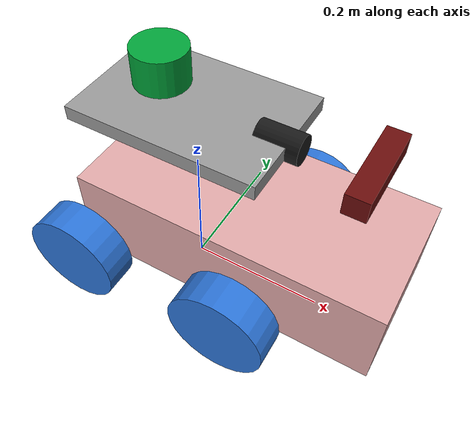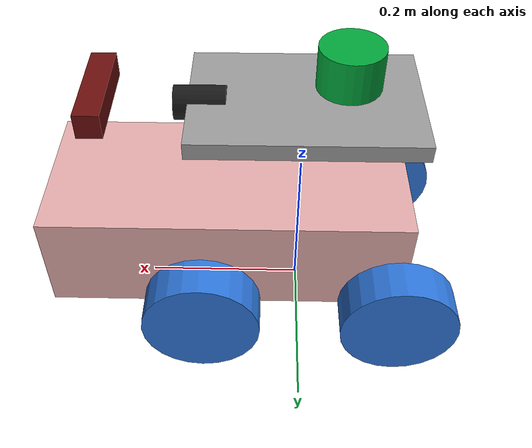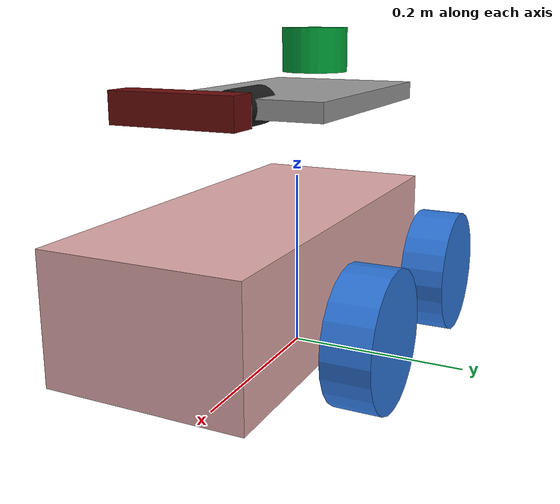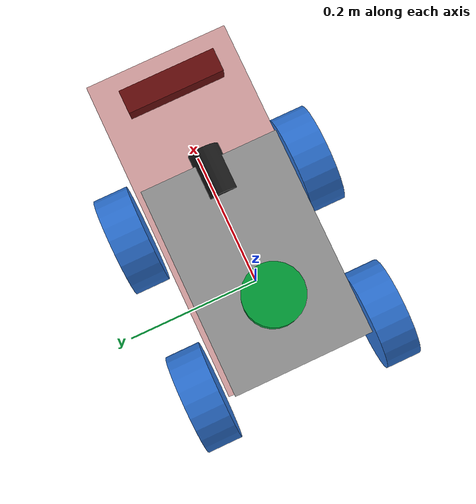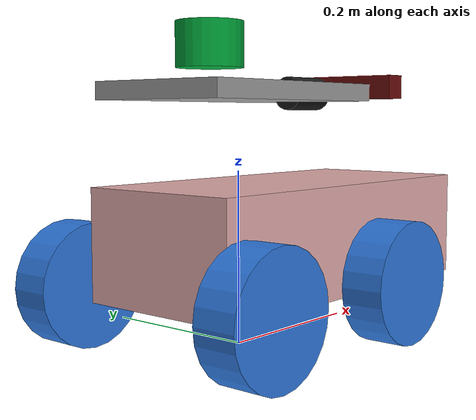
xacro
<?xml version="1.0"?>
<robot name="linorobot2_mecanum" xmlns:xacro="http://ros.org/wiki/xacro">
  <xacro:include filename="$(find linorobot2_description)/urdf/mecanum_properties.urdf.xacro" />
  <xacro:include filename="$(find linorobot2_description)/urdf/mech/base.urdf.xacro" />
  <xacro:include filename="$(find linorobot2_description)/urdf/mech/mecanum_wheel.urdf.xacro" />
  <xacro:include filename="$(find linorobot2_description)/urdf/mech/lift.urdf.xacro" />
  <xacro:include filename="$(find linorobot2_description)/urdf/mech/gripper.urdf.xacro" />
  <xacro:include filename="$(find linorobot2_description)/urdf/sensors/plugins.urdf.xacro" />
  <xacro:include filename="$(find linorobot2_description)/urdf/sensors/imu.urdf.xacro" />
  <xacro:include filename="$(find linorobot2_description)/urdf/sensors/generic_laser.urdf.xacro" />
  <xacro:include filename="$(find linorobot2_description)/urdf/sensors/depth_sensor.urdf.xacro" />
  <!-- Gazebo Classic diff_drive plugin (replaces ros2_control which crashes on Humble) -->
  <xacro:include filename="$(find linorobot2_description)/urdf/controllers/gazebo_classic_drive.urdf.xacro" />

  <!-- Chassis base -->
  <xacro:base
    length="${base_length}"
    width="${base_width}"
    height="${base_height}"
    mass="${base_mass}"
    wheel_radius="${wheel_radius}"
    wheel_pos_z="${wheel_pos_z}"
    mesh_file="${base_mesh_file}"
  />

  <!-- 4x Mecanum wheels -->
  <xacro:mecanum_wheel
    side="front_left"
    radius="${wheel_radius}"
    width="${wheel_width}"
    pos_x="${wheel_pos_x}"
    pos_y="${wheel_pos_y}"
    pos_z="${wheel_pos_z}"
    mass="${wheel_mass}"
    mesh_file="${wheel_mesh_file}"
  />
  <xacro:mecanum_wheel
    side="front_right"
    radius="${wheel_radius}"
    width="${wheel_width}"
    pos_x="${wheel_pos_x}"
    pos_y="${-wheel_pos_y}"
    pos_z="${wheel_pos_z}"
    mass="${wheel_mass}"
    mesh_file="${wheel_mesh_file}"
  />
  <xacro:mecanum_wheel
    side="rear_left"
    radius="${wheel_radius}"
    width="${wheel_width}"
    pos_x="${-wheel_pos_x}"
    pos_y="${wheel_pos_y}"
    pos_z="${wheel_pos_z}"
    mass="${wheel_mass}"
    mesh_file="${wheel_mesh_file}"
  />
  <xacro:mecanum_wheel
    side="rear_right"
    radius="${wheel_radius}"
    width="${wheel_width}"
    pos_x="${-wheel_pos_x}"
    pos_y="${-wheel_pos_y}"
    pos_z="${wheel_pos_z}"
    mass="${wheel_mass}"
    mesh_file="${wheel_mesh_file}"
  />

  <!-- Prismatic lift mechanism (base_link → lift_link, 0.0–0.8m Z range) -->
  <xacro:lift_mechanism base_length="${base_length}" />

  <!-- Campaign 5: Vacuum suction gripper mounted on lift_link -->
  <xacro:vacuum_gripper parent_link="lift_link" lift_z="0.0" />

  <!-- Sensors mounted on lift_link for multi-level scanning -->
  <xacro:imu parent_link="lift_link">
    <origin xyz="0 0 0.05" rpy="0 0 0"/>
  </xacro:imu>

  <xacro:generic_laser parent_link="lift_link">
    <xacro:insert_block name="laser_pose" />
  </xacro:generic_laser>

  <xacro:depth_sensor parent_link="lift_link">
    <xacro:insert_block name="depth_sensor_pose" />
  </xacro:depth_sensor>

  <!-- Gazebo Classic diff_drive + joint_state_publisher -->
  <xacro:classic_drive_plugin />
</robot>

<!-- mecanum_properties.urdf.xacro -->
<robot xmlns:xacro="http://ros.org/wiki/xacro">
  <xacro:arg name="namespace" default="" />
  <xacro:property name="base_length" value="0.445" />
  <xacro:property name="base_width" value="0.200" />
  <xacro:property name="base_height" value="0.129" />
  <xacro:property name="base_mass" value="10" />
  <!-- set empty on the wheel_mesh_file to use geometry instead of mesh -->
  <xacro:property name="base_mesh_file" value="" />

  <xacro:property name="wheel_radius" value="0.07162" />
  <xacro:property name="wheel_width" value="0.05" />
  <xacro:property name="wheel_pos_x" value="0.120" />
  <xacro:property name="wheel_pos_y" value="0.1355" />
  <xacro:property name="wheel_pos_z" value="-0.04788" />
  <xacro:property name="wheel_mass" value=".6" />
  <xacro:property name="wheel_torque" value="20" />
  <!-- set empty on the wheel_mesh_file to use geometry instead of mesh -->
  <xacro:property name="wheel_mesh_file" value="" />

  <xacro:property name="laser_pose">
    <origin xyz="-0.0475 0 0.125" rpy="0 0 0"/>
  </xacro:property>

  <xacro:property name="depth_sensor_pose">
    <origin xyz="0.2375 0 0.06" rpy="0 0 0"/>
  </xacro:property>
</robot>

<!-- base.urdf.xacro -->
<robot xmlns:xacro="http://ros.org/wiki/xacro">
  <xacro:macro name="base" params="length width height mass wheel_radius wheel_pos_z mesh_file">
    <link name="base_footprint"/>

    <link name="base_link">
      <visual>
        <origin xyz="${(length/2) - 0.1327} 0 0" rpy="0 0 0"/>
        <geometry>
          <xacro:if value="${mesh_file == ''}">
            <box size="${length} ${width} ${height}"/>
          </xacro:if>
          <xacro:unless value="${mesh_file == ''}">
            <mesh filename="${mesh_file}" scale="1 1 1"/>
          </xacro:unless>
        </geometry>
        <material name="yellow">
          <color rgba="0.8784 0.6627 0.6627 1.0"/>
        </material>
      </visual>

      <collision>
        <origin xyz="${(length/2) - 0.0127} 0 0" rpy="0 0 0"/>
        <geometry>
          <box size="${length} ${width} ${height}"/>
        </geometry>
      </collision>

      <inertial>
        <origin xyz="0 0 0" rpy="0 0 0"/>
        <mass value="${mass}"/>
        <inertia ixx="${(1/12) * mass * ((width  * width)  + (height * height))}" ixy="0.0" ixz="0.0"
                 iyy="${(1/12) * mass * ((length * length) + (height * height))}" iyz="0.0"
                 izz="${(1/12) * mass * ((length * length) + (width  * width))}"/>
      </inertial>
    </link>

    <gazebo reference="base_link">
      <visual>
        <material>
          <ambient>0.8392 0.6314 0.0 1.0</ambient>
          <diffuse>0.8392 0.6314 0.0 1.0</diffuse>
          <specular>0.99 0.99 0.99 1.0</specular>
          <emissive>0.0 0.0 0.0 0.0</emissive>
        </material>
      </visual>
    </gazebo>

    <joint name="base_to_footprint" type="fixed">
      <parent link="base_footprint"/>
      <child link="base_link"/>
      <origin xyz="0 0 ${wheel_radius - wheel_pos_z}" rpy="0 0 0"/>
    </joint>
  </xacro:macro>
</robot>

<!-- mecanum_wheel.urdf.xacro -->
<robot xmlns:xacro="http://ros.org/wiki/xacro" xmlns:gz="http://gazebosim.org/schema">
  <xacro:macro name="mecanum_wheel" params="side radius width pos_x pos_y pos_z mass mesh_file">
    <link name="${side}_wheel_link">
      <visual>
        <origin xyz="0 0 0" rpy="${pi/2} 0 0"/>
        <geometry>
          <xacro:if value="${mesh_file == ''}">
            <cylinder radius="${radius}" length="${width}"/>
          </xacro:if>
          <xacro:unless value="${mesh_file == ''}">
            <mesh filename="${mesh_file}" scale="1 1 1"/>
          </xacro:unless>
        </geometry>
        <material name="blue">
            <color rgba="0.1764 0.4588 0.8509 1.0"/>
        </material>
      </visual>
      <collision>
        <origin xyz="0 0 0" rpy="${pi/2} 0 0"/>
        <geometry>
          <cylinder radius="${radius}" length="${width}"/>
        </geometry>
      </collision>

      <inertial>
        <origin xyz="0 0 0" rpy="0 0 0"/>
        <mass value="${mass}"/>
        <inertia ixx="${(2/5) * mass * (radius * radius)}" ixy="0" ixz="0"
                 iyy="${(2/5) * mass * (radius * radius)}" iyz="0"
                 izz="${(2/5) * mass * (radius * radius)}" />
      </inertial>
    </link>

    <gazebo reference="${side}_wheel_link">
      <collision>
        <surface>
          <friction>
            <ode>
              <mu>1.5</mu>
              <mu2>0.7</mu2>
              <kp>200000.0</kp>
              <kd>5000.0</kd>
              <xacro:if value="${side == 'front_left'}">
                <fdir1 gz:expressed_in="base_footprint">1 -1 0</fdir1>
              </xacro:if>
              <xacro:if value="${side == 'rear_left'}">
                <fdir1 gz:expressed_in="base_footprint">1 1 0</fdir1>
              </xacro:if>
              <xacro:if value="${side == 'front_right'}">
                <fdir1 gz:expressed_in="base_footprint">1 1 0</fdir1>
              </xacro:if>
              <xacro:if value="${side == 'rear_right'}">
                <fdir1 gz:expressed_in="base_footprint">1 -1 0</fdir1>
              </xacro:if>
            </ode>
          </friction>
        </surface>
      </collision>
    </gazebo>

    <gazebo reference="${side}_wheel_link">
      <visual>
        <material>
          <ambient>0.1764 0.4588 0.8509 1.0</ambient>
          <diffuse>0.1764 0.4588 0.8509 1.0</diffuse>
          <specular>0.1764 0.4588 0.8509 1.0</specular>
          <emissive>0.0 0.0 0.0 0.0</emissive>
        </material>
      </visual>
    </gazebo>
    <joint name="${side}_wheel_joint" type="continuous">
      <axis xyz="0 1 0" />
      <parent link="base_link"/>
      <child link="${side}_wheel_link"/>
      <origin xyz="${pos_x} ${pos_y} ${pos_z}" rpy="0 0 0"/>
    </joint>
  </xacro:macro>
</robot>

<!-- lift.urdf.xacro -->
<robot xmlns:xacro="http://ros.org/wiki/xacro">
  <xacro:macro name="lift_mechanism" params="base_length">
    <!-- Prismatic lift joint: vertical (Z-axis), range 0.0 ~ 0.8m -->
    <joint name="lift_joint" type="prismatic">
      <parent link="base_link"/>
      <child link="lift_link"/>
      <origin xyz="0 0 0.12" rpy="0 0 0"/>
      <axis xyz="0 0 1"/>
      <limit effort="100" lower="0.0" upper="0.8" velocity="0.2"/>
      <dynamics damping="10.0" friction="5.0"/>
    </joint>

    <!-- Lift platform (payload carrier) -->
    <link name="lift_link">
      <visual>
        <origin xyz="0 0 0.05" rpy="0 0 0"/>
        <geometry>
          <box size="${base_length * 0.6} ${base_length * 0.4} 0.02"/>
        </geometry>
        <material name="gray">
          <color rgba="0.6 0.6 0.6 1.0"/>
        </material>
      </visual>

      <collision>
        <origin xyz="0 0 0.05" rpy="0 0 0"/>
        <geometry>
          <box size="${base_length * 0.6} ${base_length * 0.4} 0.02"/>
        </geometry>
      </collision>

      <inertial>
        <origin xyz="0 0 0.05" rpy="0 0 0"/>
        <!-- Non-zero mass and inertia — anti-explosion constraint -->
        <mass value="2.0"/>
        <inertia
          ixx="0.02" ixy="0.0" ixz="0.0"
          iyy="0.02" iyz="0.0"
          izz="0.01"/>
      </inertial>
    </link>

    <gazebo reference="lift_link">
      <visual>
        <material>
          <ambient>0.6 0.6 0.6 1.0</ambient>
          <diffuse>0.6 0.6 0.6 1.0</diffuse>
          <specular>0.1 0.1 0.1 1.0</specular>
        </material>
      </visual>
    </gazebo>
  </xacro:macro>
</robot>

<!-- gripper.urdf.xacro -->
<robot xmlns:xacro="http://ros.org/wiki/xacro">
  <xacro:macro name="vacuum_gripper" params="parent_link lift_z">
    <link name="suction_link">
      <visual>
        <origin xyz="0 0 0" rpy="0 1.570796 0"/>
        <geometry>
          <cylinder radius="0.02" length="0.06"/>
        </geometry>
        <material name="black">
          <color rgba="0.1 0.1 0.1 1.0"/>
        </material>
      </visual>

      <collision>
        <!-- Small collision volume: 4cm radius × 6cm cylinder, no overlap with lift_link -->
        <origin xyz="0 0 0" rpy="0 1.570796 0"/>
        <geometry>
          <cylinder radius="0.02" length="0.06"/>
        </geometry>
      </collision>

      <inertial>
        <origin xyz="0 0 0" rpy="0 0 0"/>
        <mass value="0.05"/>  <!-- very light -->
        <inertia ixx="1e-5" ixy="0.0" ixz="0.0"
                 iyy="1e-5" iyz="0.0"
                 izz="1e-5"/>
      </inertial>
    </link>

    <!-- Fixed joint: front of lift_link → suction cup tip -->
    <joint name="suction_joint" type="fixed">
      <parent link="${parent_link}"/>
      <child link="suction_link"/>
      <!-- Position at front face of lift_link (lift_link visual/collision front edge) -->
      <origin xyz="0.12 0 0.05" rpy="0 0 0"/>
    </joint>

    <!-- gazebo_ros_vacuum_gripper plugin -->
    <gazebo>
      <plugin filename="libgazebo_ros_vacuum_gripper.so"
              name="gazebo_ros_vacuum_gripper">
        <ros>
          <namespace>/gripper</namespace>
          <remapping>switch:=switch</remapping>
        </ros>
        <link_name>suction_link</link_name>
        <max_distance>0.04</max_distance>
        <min_distance>0.005</min_distance>
        <fixed>false</fixed>
      </plugin>
    </gazebo>

    <gazebo reference="suction_link">
      <visual>
        <material>
          <ambient>0.15 0.15 0.15 1.0</ambient>
          <diffuse>0.15 0.15 0.15 1.0</diffuse>
        </material>
      </visual>
    </gazebo>
  </xacro:macro>
</robot>

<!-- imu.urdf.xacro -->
<robot xmlns:xacro="http://ros.org/wiki/xacro">
  <xacro:macro name="imu" params="parent_link:=base_link *origin">
    <link name="imu_link"/>

    <joint name="imu_joint" type="fixed">
      <parent link="${parent_link}"/>
      <child link="imu_link"/>
      <xacro:insert_block name="origin" />
    </joint>

    <gazebo reference="imu_link">
      <sensor name="imu_sensor" type="imu">
        <topic>imu/data</topic>
        <update_rate>50</update_rate>
        <always_on>true</always_on>
        <visualize>true</visualize>
      </sensor>
    </gazebo>
  </xacro:macro>
</robot>

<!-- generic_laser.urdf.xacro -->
<robot xmlns:xacro="http://ros.org/wiki/xacro">
  <xacro:include filename="$(find linorobot2_description)/urdf/sensors/laser.urdf.xacro" />

  <xacro:macro name="generic_laser" params="*origin parent_link:=base_link">
    <xacro:laser
      update_rate="10"
      ray_count="360"
      min_angle="-3.1416"
      max_angle="3.1416"
      min_range="0.08"
      max_range="12.0"
      frame_id="laser"
      topic_name="scan"
      parent_link="${parent_link}"
    >
      <xacro:insert_block name="origin" />
    </xacro:laser>
  </xacro:macro>

  <xacro:macro name="generic_base_laser" params="*origin parent_link:=base_link">
    <xacro:laser
      update_rate="10"
      ray_count="360"
      min_angle="-3.1416"
      max_angle="3.1416"
      min_range="0.21"
      max_range="5.5"
      frame_id="base_laser"
      topic_name="base/scan"
      parent_link="${parent_link}"
    >
      <xacro:insert_block name="origin" />
    </xacro:laser>
  </xacro:macro>
</robot>

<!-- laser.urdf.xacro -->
<robot xmlns:xacro="http://ros.org/wiki/xacro">
  <xacro:property name="M_PI" value="3.1415926535897931" />
  <xacro:macro name="laser" params="*origin update_rate ray_count min_angle max_angle min_range max_range frame_id topic_name parent_link:=base_link">
    <link name="${frame_id}">
      <visual>
        <origin xyz="0 0 -0.025" rpy="0 0 0"/>
        <geometry>
          <cylinder radius="0.0375" length="0.05"/>
        </geometry>
        <material name="green">
            <color rgba="0.003 0.639 0.223 1.0"/>
        </material>
      </visual>
      <collision>
        <origin xyz="0 0 -0.025" rpy="0 0 0"/>
        <geometry>
          <cylinder radius="0.0375" length="0.05"/>
        </geometry>
      </collision>

      <inertial>
        <origin xyz="0 0 0" rpy="0 0 0"/>
        <mass value="0.1"/>
        <inertia ixx="${(2/5) * 0.1 * (0.0375 * 0.0375)}" ixy="0" ixz="0"
                 iyy="${(2/5) * 0.1 * (0.0375 * 0.0375)}" iyz="0"
                 izz="${(2/5) * 0.1 * (0.0375 * 0.0375)}" />
      </inertial>
    </link>

    <gazebo reference="${frame_id}">
      <visual>
        <material>
          <ambient>0.003 0.639 0.223 1.0</ambient>
          <diffuse>0.003 0.639 0.223 1.0</diffuse>
          <specular>0.003 0.639 0.223 1.0</specular>
          <emissive>0.0 0.0 0.0 0.0</emissive>
        </material>
      </visual>
    </gazebo>

    <joint name="${frame_id}_joint" type="fixed">
      <parent link="${parent_link}"/>
      <child link="${frame_id}"/>
      <xacro:insert_block name="origin" />
    </joint>

    <gazebo reference="${frame_id}">
      <sensor name="${frame_id}_sensor" type="ray">
        <topic>${topic_name}</topic>
        <update_rate>${update_rate}</update_rate>
        <always_on>true</always_on>
        <visualize>true</visualize>
        <ray>
          <scan>
            <horizontal>
              <samples>${ray_count}</samples>
              <resolution>1</resolution>
              <min_angle>${min_angle}</min_angle>
              <max_angle>${max_angle}</max_angle>
            </horizontal>
          </scan>
          <range>
            <min>${min_range}</min>
            <max>${max_range}</max>
            <resolution>0.01</resolution>
          </range>
        </ray>
      </sensor>
    </gazebo>
  </xacro:macro>
</robot>

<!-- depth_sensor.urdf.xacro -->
<robot xmlns:xacro="http://ros.org/wiki/xacro">
  <xacro:property name="M_PI" value="3.1415926535897931" />
  <xacro:macro name="depth_sensor" params="parent_link:=base_link *origin">
    <link name="camera_link">
      <visual>
        <origin xyz="0 0 0" rpy="0 0 0"/>
        <geometry>
          <box size="0.030 0.124 0.030"/>
        </geometry>
        <material name="red">
          <color rgba="0.416 0.051 0.047 1.0"/>
        </material>
      </visual>

      <collision>
        <origin xyz="0 0 0" rpy="0 0 0"/>
        <geometry>
          <box size="0.030 0.124 0.030"/>
        </geometry>
      </collision>

      <inertial>
        <origin xyz="0 0 0" rpy="0 0 0"/>
        <mass value="0.135"/>
        <inertia ixx="${(1/12) * 0.135 * ((0.124  * 0.124)  + (0.030 * 0.030))}" ixy="0.0" ixz="0.0"
                 iyy="${(1/12) * 0.135 * ((0.030 * 0.030) + (0.030 * 0.030))}" iyz="0.0"
                 izz="${(1/12) * 0.135 * ((0.030 * 0.030) + (0.124  * 0.124))}"/>
      </inertial>
    </link>

    <gazebo reference="camera_link">
      <visual>
        <material>
          <ambient>0.416 0.051 0.047 1.0</ambient>
          <diffuse>0.416 0.051 0.047 1.0</diffuse>
          <specular>0.416 0.051 0.047 1.0</specular>
          <emissive>0.416 0.051 0.047 1.0</emissive>
        </material>
      </visual>
    </gazebo>

    <joint name="camera_joint" type="fixed">
      <parent link="${parent_link}"/>
      <child link="camera_link"/>
      <xacro:insert_block name="origin" />
    </joint>

    <!-- REP 103 optical frame: Z-forward (out of lens), X-right, Y-down -->
    <link name="camera_depth_link"/>
    <joint name="camera_depth_joint" type="fixed">
      <origin xyz="0 0 0" rpy="-1.570796 0 -1.570796"/>
      <parent link="camera_link"/>
      <child link="camera_depth_link"/>
    </joint>

    <!-- Gazebo Classic: split RGBD into camera + depth sensors -->
    <gazebo reference="camera_link">
      <sensor name="camera_color" type="camera">
        <topic>camera/color</topic>
        <update_rate>30.0</update_rate>
        <always_on>true</always_on>
        <visualize>true</visualize>
        <camera>
          <horizontal_fov>1.089</horizontal_fov>
          <image>
            <width>640</width>
            <height>480</height>
            <format>R8G8B8</format>
          </image>
          <clip>
            <near>0.1</near>
            <far>100</far>
          </clip>
        </camera>
      </sensor>
      <sensor name="camera_depth" type="depth">
        <topic>camera/depth</topic>
        <update_rate>30.0</update_rate>
        <always_on>true</always_on>
        <camera>
          <horizontal_fov>1.089</horizontal_fov>
          <image>
            <width>640</width>
            <height>480</height>
            <format>R8G8B8</format>
          </image>
          <clip>
            <near>0.1</near>
            <far>100</far>
          </clip>
        </camera>
      </sensor>
    </gazebo>
  </xacro:macro>
</robot>
